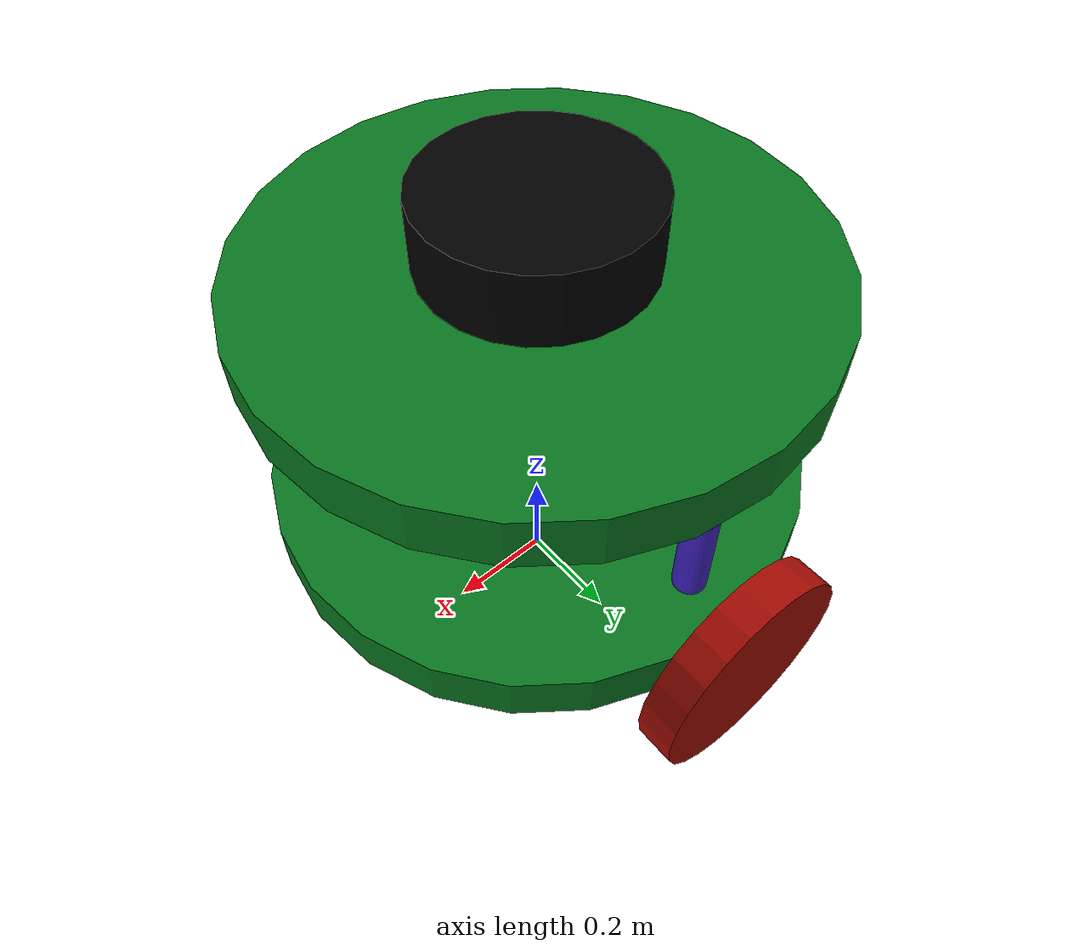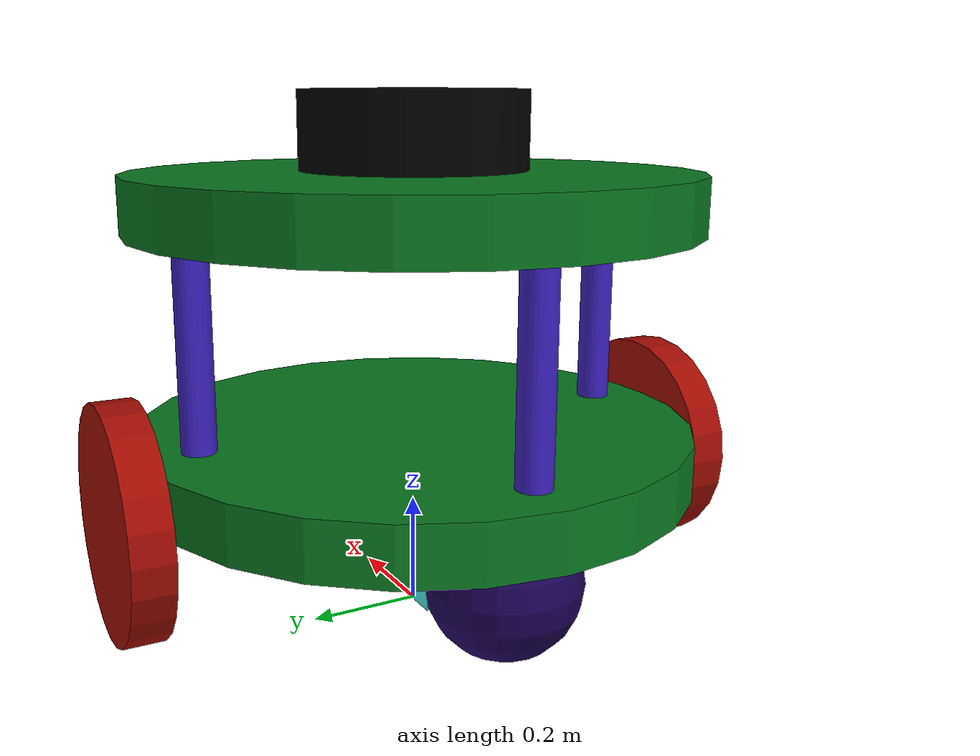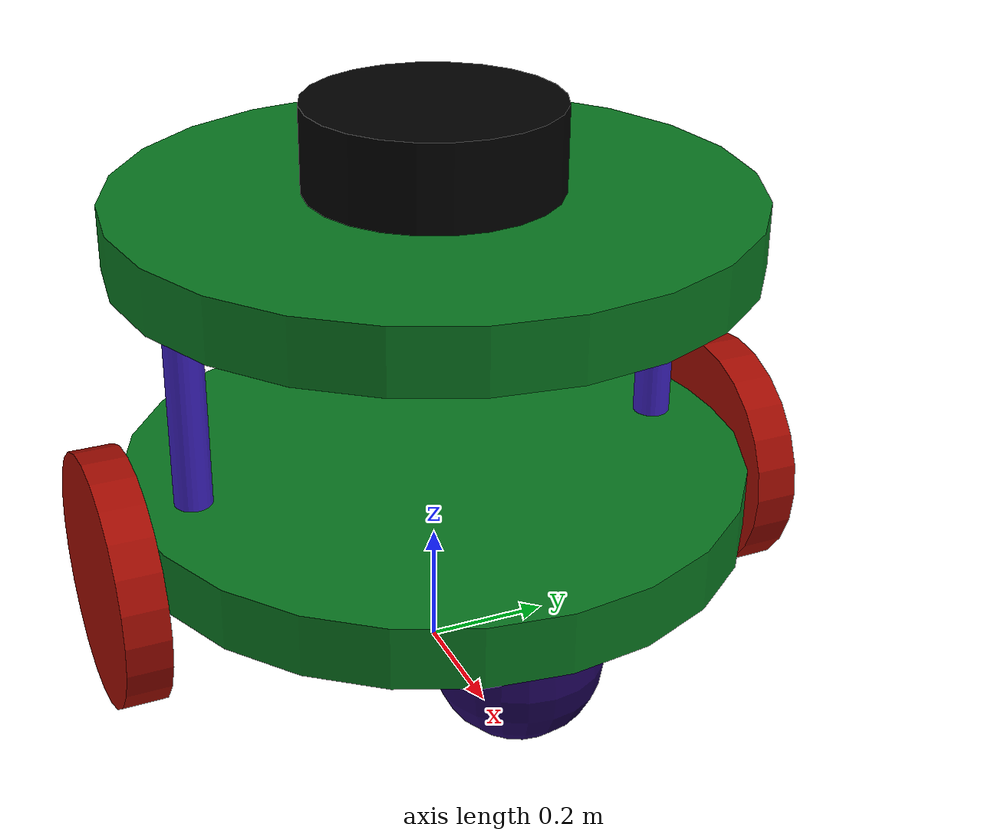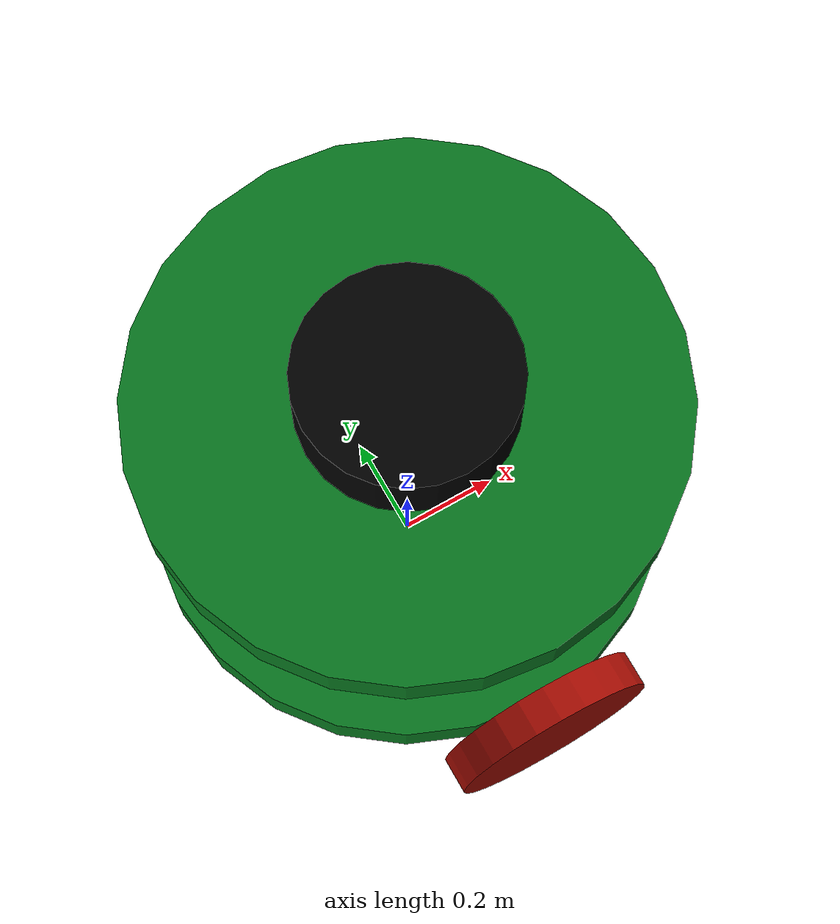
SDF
<?xml version="1.0" ?>
<sdf version="1.10">
        <model name="beetlebot" canonical_link='base_link'>
            <pose >0 0 0 0 0 0</pose>

            <link name="base_link">
                <pose relative_to='__model__'>0 0 0.3 0 0 0</pose>
                <visual name='base_link visual'>
                    <pose>0 0 0 0 0 0</pose>
                    <geometry>
                        <cylinder>
                            <radius>0.5</radius>
                            <length>0.1</length>
                        </cylinder>
                    </geometry>
                    <material>
                        <ambient>0.033104766565152086 0.46778379610254284 0.12477181755144427 1</ambient>
                        <diffuse>0.033104766565152086 0.46778379610254284 0.12477181755144427 1</diffuse>
                        <specular>0.1 0.1 0.1 1</specular>
                        <emissive>0 0 0 1</emissive>
                    </material>
                </visual>
                <collision name='base_link collision'>
                    <pose>0 0 0 0 0 0</pose>
                    <geometry>
                        <cylinder>
                            <radius>0.5</radius>
                            <length>0.1</length>
                        </cylinder>
                    </geometry>
                </collision>
                <inertial>
                    <mass>1</mass>
                    <inertia>
                        <ixx>0.3333333333333333</ixx>
                        <ixy>0</ixy>
                        <ixz>0</ixz>
                        <iyy>0.5</iyy>
                        <iyz>0</iyz>
                        <izz>0.3333333333333333</izz>
                    </inertia>
                </inertial>
            </link>

            <!-- right wheel link -->
            <link name="wheel_right">
                <pose relative_to='base_link'>0 0.53 -0.05 1.5707963267948963 0 0</pose>
                <visual name='wheel_right visual'>
                    <pose>0 0 0 0 0 0</pose>
                    <geometry>
                        <cylinder>
                            <radius>0.2</radius>
                            <length>0.07</length>
                        </cylinder>
                    </geometry>
                    <material>
                        <ambient>0.6375968739867731 0.04373502925049377 0.008023192982520563 1</ambient>
                        <diffuse>0.6375968739867731 0.04373502925049377 0.008023192982520563 1</diffuse>
                        <specular>0.1 0.1 0.1 1</specular>
                        <emissive>0 0 0 1</emissive>
                    </material>
                </visual>
                <collision name='wheel_right collision'>
                    <pose>0 0 0 0 0 0</pose>
                    <geometry>
                        <cylinder>
                            <radius>0.2</radius>
                            <length>0.07</length>
                        </cylinder>
                    </geometry>
                </collision>
                <inertial>
                    <mass>1</mass>
                    <inertia>
                        <ixx>0.3333333333333333</ixx>
                        <ixy>0</ixy>
                        <ixz>0</ixz>
                        <iyy>0.5</iyy>
                        <iyz>0</iyz>
                        <izz>0.3333333333333333</izz>
                    </inertia>
                </inertial>
            </link>

            <!-- right wheel joint -->
            <joint name="base_link_to_wheel_right" type="revolute">
                <pose relative_to='wheel_right'>0 0 0 0 0 0</pose>
                <parent>base_link</parent>
                <child>wheel_right</child>
                <axis>
                    <xyz expressed_in='wheel_right'>0 0 1</xyz>
                </axis>
            </joint>

            <!-- left wheel link -->
            <link name="wheel_left">
                <pose relative_to='base_link'>0 -0.53 -0.05 1.5707963267948963 0 0</pose>
                <visual name='wheel_left visual'>
                    <pose>0 0 0 0 0 0</pose>
                    <geometry>
                        <cylinder>
                            <radius>0.2</radius>
                            <length>0.07</length>
                        </cylinder>
                    </geometry>
                    <material>
                        <ambient>0.6375968739867731 0.04373502925049377 0.008023192982520563 1</ambient>
                        <diffuse>0.6375968739867731 0.04373502925049377 0.008023192982520563 1</diffuse>
                        <specular>0.1 0.1 0.1 1</specular>
                        <emissive>0 0 0 1</emissive>
                    </material>
                </visual>
                <collision name='wheel_left collision'>
                    <pose>0 0 0 0 0 0</pose>
                    <geometry>
                        <cylinder>
                            <radius>0.2</radius>
                            <length>0.07</length>
                        </cylinder>
                    </geometry>
                </collision>
                <inertial>
                    <mass>1</mass>
                    <inertia>
                        <ixx>0.3333333333333333</ixx>
                        <ixy>0</ixy>
                        <ixz>0</ixz>
                        <iyy>0.5</iyy>
                        <iyz>0</iyz>
                        <izz>0.3333333333333333</izz>
                    </inertia>
                </inertial>
            </link>

            <!-- left wheel joint -->
            <joint name="base_link_to_wheel_left" type="revolute">
                <pose relative_to='wheel_left'>0 0 0 0 0 0</pose>
                <parent>base_link</parent>
                <child>wheel_left</child>
                <axis>
                    <xyz expressed_in='wheel_left'>0 0 1</xyz>
                </axis>
            </joint>

                <!-- top_base link -->
            <link name="top_base">
                <!-- Pose relative to base_link -->
                <pose relative_to='base_link'>0 0 0.45 0 0 0</pose>

                <!-- Visual representation of top_base -->
                <visual name='top_base visual'>
                    <pose>0 0 0 0 0 0</pose>
                    <geometry>
                        <cylinder>
                            <radius>0.5</radius>
                            <length>0.1</length>
                        </cylinder>
                    </geometry>
                    <material>
                        <ambient>0.033104766565152086 0.46778379610254284 0.12477181755144427 1</ambient>
                        <diffuse>0.033104766565152086 0.46778379610254284 0.12477181755144427 1</diffuse>
                        <specular>0.1 0.1 0.1 1</specular>
                        <emissive>0 0 0 1</emissive>
                    </material>
                </visual>

                <!-- Collision properties for top_base -->
                <collision name='top_base collision'>
                    <pose>0 0 0 0 0 0</pose>
                    <geometry>
                        <cylinder>
                            <radius>0.5</radius>
                            <length>0.1</length>
                        </cylinder>
                    </geometry>
                </collision>

                <!-- Inertial properties of top_base -->
                <inertial>
                    <mass>1</mass>
                    <inertia>
                        <ixx>0.3333333333333333</ixx>
                        <ixy>0</ixy>
                        <ixz>0</ixz>
                        <iyy>0.5</iyy>
                        <iyz>0</iyz>
                        <izz>0.3333333333333333</izz>
                    </inertia>
                </inertial>
            </link>

            <!-- top_base joint -->
            <joint name="base_link_to_top_base" type="fixed">
                <!-- Pose relative to top_base -->
                <pose relative_to='top_base'>0 0 0.45 0 0 0</pose>
                <parent>base_link</parent>
                <child>top_base</child>
            </joint>

            <!-- front_caster link -->
            <link name="front_caster">
                <!-- Pose relative to base_link -->
                <pose relative_to='base_link'>0.32 0 -0.13 0 0 -0.0008726646259971647</pose>

                <!-- Visual representation of front_caster -->
                <visual name='front_caster visual'>
                    <pose>0 0 0 0 0 0</pose>
                    <geometry>
                        <sphere>
                            <radius>0.13</radius>
                        </sphere>
                    </geometry>
                    <material>
                        <ambient>0.10702310296918527 0.0069954101845983935 0.3371636150376657 1</ambient>
                        <diffuse>0.10702310296918527 0.0069954101845983935 0.3371636150376657 1</diffuse>
                        <specular>0.1 0.1 0.1 1</specular>
                        <emissive>0 0 0 1</emissive>
                    </material>
                </visual>

                <!-- Collision properties for front_caster -->
                <collision name='front_caster collision'>
                    <pose>0 0 0 0 0 0</pose>
                    <geometry>
                        <sphere>
                            <radius>0.13</radius>
                        </sphere>
                    </geometry>
                </collision>

                <!-- Inertial properties of front_caster -->
                <inertial>
                    <mass>1</mass>
                    <inertia>
                        <ixx>0.4</ixx>
                        <ixy>0</ixy>
                        <ixz>0</ixz>
                        <iyy>0.4</iyy>
                        <iyz>0</iyz>
                        <izz>0.4</izz>
                    </inertia>
                </inertial>
            </link>

            <!-- front_caster joint -->
            <joint name="base_link_to_front_caster" type="fixed">
                <!-- Pose relative to front_caster -->
                <pose relative_to='front_caster'>0 0 0 0 0 0</pose>
                <parent>base_link</parent>
                <child>front_caster</child>
            </joint>

            <!-- rear_caster link -->
            <link name="rear_caster">
                <!-- Pose relative to base_link -->
                <pose relative_to='base_link'>-0.32 0 -0.13 0 0 -0.0008726646259971647</pose>

                <!-- Visual representation of rear_caster -->
                <visual name='rear_caster visual'>
                    <pose>0 0 0 0 0 0</pose>
                    <geometry>
                        <sphere>
                            <radius>0.13</radius>
                        </sphere>
                    </geometry>
                    <material>
                        <ambient>0.10702310296918527 0.0069954101845983935 0.3371636150376657 1</ambient>
                        <diffuse>0.10702310296918527 0.0069954101845983935 0.3371636150376657 1</diffuse>
                        <specular>0.1 0.1 0.1 1</specular>
                        <emissive>0 0 0 1</emissive>
                    </material>
                </visual>

                <!-- Collision properties for rear_caster -->
                <collision name='rear_caster collision'>
                    <pose>0 0 0 0 0 0</pose>
                    <geometry>
                        <sphere>
                            <radius>0.13</radius>
                        </sphere>
                    </geometry>
                </collision>

                <!-- Inertial properties of rear_caster -->
                <inertial>
                    <mass>1</mass>
                    <inertia>
                        <ixx>0.4</ixx>
                        <ixy>0</ixy>
                        <ixz>0</ixz>
                        <iyy>0.4</iyy>
                        <iyz>0</iyz>
                        <izz>0.4</izz>
                    </inertia>
                </inertial>
            </link>

            <!-- rear_caster joint -->
            <joint name="base_link_to_rear_caster" type="fixed">
                <!-- Pose relative to rear_caster -->
                <pose relative_to='rear_caster'>0 0 0 0 0 0</pose>
                <parent>base_link</parent>
                <child>rear_caster</child>
            </joint>

            <!-- left_bar link -->
            <link name="left_bar">
                <!-- Pose relative to base_link -->
                <pose relative_to='base_link'>0 -0.4 0.2058808723746403 0 0 0</pose>

                <!-- Visual representation of left_bar -->
                <visual name='left_bar visual'>
                    <pose>0 0 0 0 0 0</pose>
                    <geometry>
                        <cylinder>
                            <radius>0.03</radius>
                            <length>0.5</length>
                        </cylinder>
                    </geometry>
                    <material>
                        <ambient>0.23839757380151394 0.12743768042608497 0.7529422167708612 1</ambient>
                        <diffuse>0.23839757380151394 0.12743768042608497 0.7529422167708612 1</diffuse>
                        <specular>0.1 0.1 0.1 1</specular>
                        <emissive>0 0 0 1</emissive>
                    </material>
                </visual>

                <!-- Collision properties for left_bar -->
                <collision name='left_bar collision'>
                    <pose>0 0 0 0 0 0</pose>
                    <geometry>
                        <cylinder>
                            <radius>0.03</radius>
                            <length>0.5</length>
                        </cylinder>
                    </geometry>
                </collision>

                <!-- Inertial properties of left_bar -->
                <inertial>
                    <mass>1</mass>
                    <inertia>
                        <ixx>0.3333333333333333</ixx>
                        <ixy>0</ixy>
                        <ixz>0</ixz>
                        <iyy>0.5</iyy>
                        <iyz>0</iyz>
                        <izz>0.3333333333333333</izz>
                    </inertia>
                </inertial>
            </link>

            <!-- left_bar joint -->
            <joint name="base_link_to_left_bar" type="fixed">
                <!-- Pose relative to left_bar -->
                <pose relative_to='left_bar'>0 0 0 0 0 0</pose>
                <parent>base_link</parent>
                <child>left_bar</child>
            </joint>

            <!-- right_bar link -->
            <link name="right_bar">
                <!-- Pose relative to base_link -->
                <pose relative_to='base_link'>0 0.4 0.2058808723746403 0 0 0</pose>

                <!-- Visual representation of right_bar -->
                <visual name='right_bar visual'>
                    <pose>0 0 0 0 0 0</pose>
                    <geometry>
                        <cylinder>
                            <radius>0.03</radius>
                            <length>0.5</length>
                        </cylinder>
                    </geometry>
                    <material>
                        <ambient>0.23839757380151394 0.12743768042608497 0.7529422167708612 1</ambient>
                        <diffuse>0.23839757380151394 0.12743768042608497 0.7529422167708612 1</diffuse>
                        <specular>0.1 0.1 0.1 1</specular>
                        <emissive>0 0 0 1</emissive>
                    </material>
                </visual>

                <!-- Collision properties for right_bar -->
                <collision name='right_bar collision'>
                    <pose>0 0 0 0 0 0</pose>
                    <geometry>
                        <cylinder>
                            <radius>0.03</radius>
                            <length>0.5</length>
                        </cylinder>
                    </geometry>
                </collision>

                <!-- Inertial properties of right_bar -->
                <inertial>
                    <mass>1</mass>
                    <inertia>
                        <ixx>0.3333333333333333</ixx>
                        <ixy>0</ixy>
                        <ixz>0</ixz>
                        <iyy>0.5</iyy>
                        <iyz>0</iyz>
                        <izz>0.3333333333333333</izz>
                    </inertia>
                </inertial>
            </link>

            <!-- right_bar joint -->
            <joint name="base_link_to_right_bar" type="fixed">
                <!-- Pose relative to right_bar -->
                <pose relative_to='right_bar'>0 0 0 0 0 0</pose>
                <parent>base_link</parent>
                <child>right_bar</child>
            </joint>

            <!-- rear_bar link -->
            <link name="rear_bar">
                <!-- Pose relative to base_link -->
                <pose relative_to='base_link'>-0.4 0 0.2058808723746403 0 0 0</pose>

                <!-- Visual representation of rear_bar -->
                <visual name='rear_bar visual'>
                    <pose>0 0 0 0 0 0</pose>
                    <geometry>
                        <cylinder>
                            <radius>0.03</radius>
                            <length>0.5</length>
                        </cylinder>
                    </geometry>
                    <material>
                        <ambient>0.23839757380151394 0.12743768042608497 0.7529422167708612 1</ambient>
                        <diffuse>0.23839757380151394 0.12743768042608497 0.7529422167708612 1</diffuse>
                        <specular>0.1 0.1 0.1 1</specular>
                        <emissive>0 0 0 1</emissive>
                    </material>
                </visual>

                <!-- Collision properties for rear_bar -->
                <collision name='rear_bar collision'>
                    <pose>0 0 0 0 0 0</pose>
                    <geometry>
                        <cylinder>
                            <radius>0.03</radius>
                            <length>0.5</length>
                        </cylinder>
                    </geometry>
                </collision>

                <!-- Inertial properties of rear_bar -->
                <inertial>
                    <mass>1</mass>
                    <inertia>
                        <ixx>0.3333333333333333</ixx>
                        <ixy>0</ixy>
                        <ixz>0</ixz>
                        <iyy>0.5</iyy>
                        <iyz>0</iyz>
                        <izz>0.3333333333333333</izz>
                    </inertia>
                </inertial>
            </link>

            <!-- rear_bar joint -->
            <joint name="base_link_to_rear_bar" type="fixed">
                <!-- Pose relative to rear_bar -->
                <pose relative_to='rear_bar'>0 0 0 0 0 0</pose>
                <parent>base_link</parent>
                <child>rear_bar</child>
            </joint>

            <!-- include lidar sensor model file  -->

            <frame name="lidar_frame" attached_to='lidar'>
                <pose>0.8 0 0.5 0 0 0</pose>
            </frame>

            <link name="lidar">
                <pose relative_to='base_link'>0 0 0.57 0 0 0</pose>
                <visual name='lidar visual'>
                    <pose>0 0 0 0 0 0</pose>
                    <geometry>
                        <cylinder>
                            <radius>0.2</radius>
                            <length>0.13538975482266932</length>
                        </cylinder>
                    </geometry>
                    <material>
                        <ambient>0 0 0 1</ambient>
                        <diffuse>0 0 0 1</diffuse>
                        <specular>0.1 0.1 0.1 1</specular>
                        <emissive>0 0 0 1</emissive>
                    </material>
                </visual>
                <collision name='lidar collision'>
                    <pose>0 0 0 0 0 0</pose>
                    <geometry>
                        <cylinder>
                            <radius>0.2</radius>
                            <length>0.13538975482266932</length>
                        </cylinder>
                    </geometry>
                </collision>
                <inertial>
                    <mass>1</mass>
                    <inertia>
                        <ixx>0.3333333333333333</ixx>
                        <ixy>0</ixy>
                        <ixz>0</ixz>
                        <iyy>0.5</iyy>
                        <iyz>0</iyz>
                        <izz>0.3333333333333333</izz>
                    </inertia>
                </inertial>
                <sensor name='gpu_lidar' type='gpu_lidar'>"
                    <pose relative_to='lidar_frame'>0 0 0 0 0 0</pose>
                    <topic>lidar</topic>
                    <update_rate>10</update_rate>
                    <ray>
                        <scan>
                            <horizontal>
                                <samples>640</samples>
                                <resolution>1</resolution>
                                <min_angle>-1.396263</min_angle>
                                <max_angle>1.396263</max_angle>
                            </horizontal>
                            <vertical>
                                <samples>1</samples>
                                <resolution>0.01</resolution>
                                <min_angle>0</min_angle>
                                <max_angle>0</max_angle>
                            </vertical>
                        </scan>
                        <range>
                            <min>0.08</min>
                            <max>10.0</max>
                            <resolution>0.01</resolution>
                        </range>
                    </ray>
                    <always_on>1</always_on>
                    <visualize>true</visualize>
                </sensor>
            </link>

            <joint name="base_link_to_lidar" type="fixed">
                <pose relative_to='lidar'>0 0 0 0 0 0</pose>
                <parent>base_link</parent>
                <child>lidar</child>
            </joint>

            <!-- include imu sensor model file  -->
            <include>
                <uri>file://sub_models/imu_sensor.sdf</uri>
                <pose relative_to="base_link"> -0.1 0.0 0.1 0 0 0</pose>
            </include>

            <joint name="base_link_to_imu_sensor" type="fixed">
                <pose relative_to="imu_sensor_model::imu_sensor">0 0 0 0 0 0</pose>
                <parent>base_link</parent>
                <child>imu_sensor_model::imu_sensor</child>
            </joint>

        </model>
    </sdf>

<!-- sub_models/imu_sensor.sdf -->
<sdf version="1.10">
    <model name="imu_sensor_model">
            <link name="imu_sensor">
                <pose>0.0 0 0 0 0 0</pose>
                <visual name="imu_sensor_visual">
                    <pose>0 0 0 0 0 0</pose>
                    <geometry>
                        <box>
                            <size>0.1 0.1 0.1</size>
                        </box>
                    </geometry>
                    <material>
                        <ambient>0.2874408377161099 0.9559733532482866 0.913098651791473 1</ambient>
                        <diffuse>0.2874408377161099 0.9559733532482866 0.913098651791473 1</diffuse>
                        <specular>0.1 0.1 0.1 1</specular>
                        <emissive>0 0 0 1</emissive>
                    </material>
                </visual>
                <collision name="imu_sensor_collision">
                    <pose>0 0 0 0 0 0</pose>
                    <geometry>
                        <box>
                            <size>0.1 0.1 0.1</size>
                        </box>
                    </geometry>
                </collision>
                <inertial>
                    <mass>1</mass>
                    <inertia>
                        <ixx>0.16666666666666666</ixx>
                        <ixy>0</ixy>
                        <ixz>0</ixz>
                        <iyy>0.16666666666666666</iyy>
                        <iyz>0</iyz>
                        <izz>0.16666666666666666</izz>
                    </inertia>
                </inertial>
                <sensor name="imu_sensor" type="imu">
                    <always_on>1</always_on>
                    <update_rate>1</update_rate>
                    <visualize>true</visualize>
                    <topic>imu</topic>
                </sensor>

            </link>

    </model>

</sdf>
